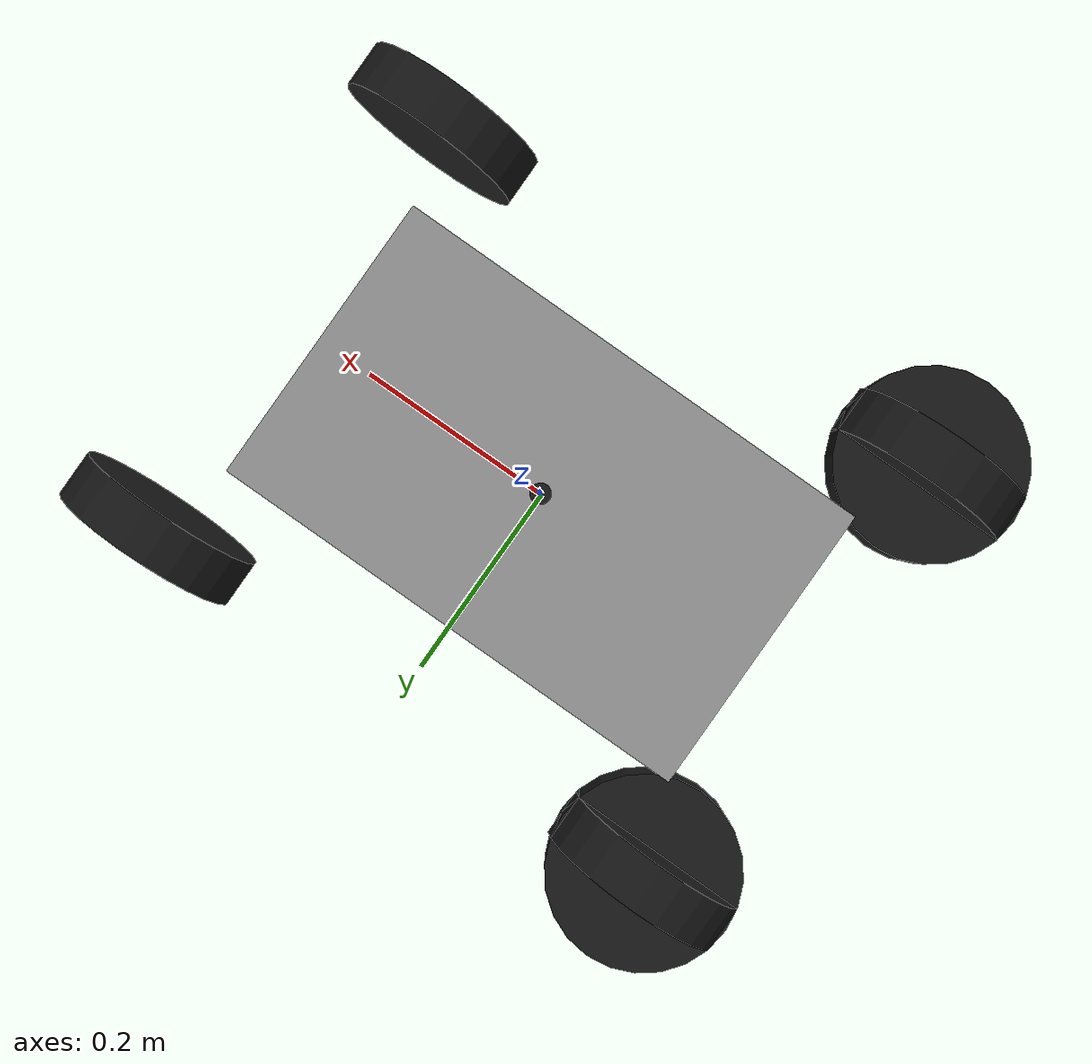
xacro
<?xml version="1.0"?>
<robot name="one_wheel"
    xmlns:xacro="http://www.ros.org/wiki/xacro">

    <xacro:include filename="ackermann_wheels.xacro" />
    <xacro:include filename="lib.xacro" />

    <xacro:property name="l_b" value="0.5"/>
    <xacro:property name="w_b" value="0.3"/>
    <xacro:property name="h_b" value="0.1"/>
    <xacro:property name="m_b" value="8"/>

    <xacro:property name="wheel_h" value="0.1"/>
    <xacro:property name="wheel_spacing" value="0.1"/>
    <link name="body_link">
        <visual>
            <geometry>
                <box size="${l_b} ${w_b} ${h_b}" />
            </geometry>
            <material name="Body_Gray" />
        </visual>
        <collision>
            <geometry>
                <box size="${l_b} ${w_b} ${h_b}" />
            </geometry>
        </collision>
        <xacro:box_inertia m="${m_b}" x="${l_b}" y="${w_b}" z="${h_b}" />
    </link>
    <gazebo reference="body_link">
        <material value="Gazebo/Wood" />
    </gazebo>

    <link name="base_link">

    </link>

    <joint name="body_joint" type="fixed">
        <parent link="base_link" />
        <child link="body_link" />
        <origin xyz="0 0 0" rpy="0 0 0" />
    </joint>
    <xacro:autocar_front_wheel name="fr" steer_name="r_steer" rpy="0 0 0" xyz="-0.3 ${wheel_spacing+(w_b/2)} ${-wheel_h}" base_link_name="body_link"/>
    <xacro:autocar_front_wheel name="fl" steer_name="l_steer" rpy="0 0 0" xyz="-0.3 ${-(wheel_spacing+(w_b/2))}  ${-wheel_h}" base_link_name="body_link"/>
    <xacro:autocar_back_wheel name="br" rpy="0 0 0" xyz="0.3 ${wheel_spacing+(w_b/2)} ${-wheel_h}" base_link_name="body_link"/>
    <xacro:autocar_back_wheel name="bl" rpy="0 0 0" xyz="0.3 ${-(wheel_spacing+(w_b/2))} ${-wheel_h}" base_link_name="body_link"/>

    <xacro:property name="m_steer_wheel" value="0.8"/>
    <xacro:property name="r_steer_wheel" value="0.01"/>
    <xacro:property name="h_steer_wheel" value="0.01"/>
    <link name="steering_wheel">

        <xacro:cylinder_inertia m="${m_steer_wheel}" r="${r_steer_wheel}" h="${h_steer_wheel}"/>
        <visual>
            <origin rpy="0 0 0" xyz="0 0 0"/>
            <geometry>
                <cylinder radius="${r_steer_wheel}" length="${h_steer_wheel}" />
            </geometry>
            <material name="Wheel_Black"/>
        </visual>
    </link>

    <joint name="steering_joint" type="continuous">
        <origin rpy="0 0 0" xyz="0 0 ${(h_b+h_steer_wheel)/2+0.001}"/>
        <parent link="body_link"/>
        <child link="steering_wheel"/>
        <axis xyz="0.0 0.0 1.0"/>
        <limit effort="100.0" lower="-6" upper="6" velocity="100"/>
        <dynamics damping="0.0" friction="1.0"/>
    </joint>

    <xacro:property name="steering_pid" value="100 0 17"/>
    <xacro:property name="steering_i_range" value="0 0"/>

    <xacro:property name="linear_pid" value="1 0 0"/>
    <xacro:property name="linear_i_range" value="0 0"/>

    <gazebo>
        <plugin name='ackermann_drive' filename='libgazebo_ros_ackermann_drive.so'>

            <ros>
                <namespace>ackermann_dorothy</namespace>
                <remapping>cmd_vel:=cmd_vel</remapping>
                <remapping>odom:=odom</remapping>
                <remapping>distance:=distance</remapping>
            </ros>

            <update_rate>100.0</update_rate>

            <!-- wheels -->
            <front_left_joint>fl_axle</front_left_joint>
            <front_right_joint>fr_axle</front_right_joint>
            <rear_left_joint>bl_axle</rear_left_joint>
            <rear_right_joint>br_axle</rear_right_joint>
            <left_steering_joint>l_steer</left_steering_joint>
            <right_steering_joint>r_steer</right_steering_joint>

            <!-- Max absolute steer angle for tyre in radians-->
            <!-- Any cmd_vel angular z greater than this would be capped -->
            <max_steer>0.6</max_steer>

            <!-- Max absolute steering angle of steering wheel -->
            <!-- Max absolute steering angle of steering wheel -->
            <max_steering_angle>2</max_steering_angle>

            <!-- Max absolute linear speed in m/s -->
            <max_speed>10</max_speed>

            <!-- PID tuning -->
            <left_steering_pid_gain>${steering_pid} </left_steering_pid_gain>
            <left_steering_i_range>${steering_i_range}</left_steering_i_range>
            <right_steering_pid_gain>${steering_pid}</right_steering_pid_gain>
            <right_steering_i_range>${steering_i_range}</right_steering_i_range>
            <linear_velocity_pid_gain>${linear_pid}</linear_velocity_pid_gain>
            <linear_velocity_i_range>${linear_i_range}</linear_velocity_i_range>

            <!-- output -->
            <publish_odom>true</publish_odom>
            <publish_odom_tf>true</publish_odom_tf>
            <publish_wheel_tf>true</publish_wheel_tf>
            <publish_distance>true</publish_distance>

            <odometry_frame>odom</odometry_frame>
            <robot_base_frame>base_link</robot_base_frame>

        </plugin>
    </gazebo>

</robot>

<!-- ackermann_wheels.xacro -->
<!-- Macros and impelemnatation of wheels, suspensions and steering system -->

<robot xmlns:xacro="http://ros.org/wiki/xacro">
    <material name="Wheel_Black">
        <color rgba="0.1 0.1 0.1 1" />
    </material>
    <xacro:property name="w_wheel" value="0.05" />
    <xacro:property name="r_wheel" value="0.1" />
    <xacro:property name="m_wheel" value="0.3" />
    <xacro:property name="M_PI" value="3.14159265359" />

    <xacro:property name="fdir" value="0 0 1"/>
    <xacro:property name="kd" value="1e1" />
    <xacro:property name="kp" value="1e5" />
    <xacro:property name="wheel_slip" value="100" />
    <xacro:property name="wheel_mu1" value="1.0" />
    <xacro:property name="wheel_mu2" value="1.0" />

    <xacro:property name="wheel_max_effort" value="20.0" />
    <xacro:property name="wheel_max_velocity" value="20.0" />

    <xacro:macro name="cylinder_inertia" params="m r h">
        <inertial>
            <origin xyz="0 0 0" rpy="0 0 0"/>
            <mass value="${m}" />
            <inertia ixx="${m*(3*r*r+h*h)/12}" ixy="0" ixz="0" iyy="${m*(3*r*r+h*h)/12}" iyz="0" izz="${m*r*r/2}" />
        </inertial>
    </xacro:macro>
    <xacro:macro name="wheel_link" params="name">

        <link name="${name}_1">
            <xacro:cylinder_inertia m="${m_wheel}" r="${r_wheel}" h="${w_wheel}"/>
            <visual>
                <origin rpy="0 0 0" xyz="0 0 0"/>
                <geometry>
                    <cylinder radius="${r_wheel}" length="${w_wheel}" />
                </geometry>
                <material name="Wheel_Black"/>
            </visual>
            <collision>
                <origin rpy="0 0 0" xyz="0 0 0"/>
                <geometry>
                    <cylinder radius="${r_wheel}" length="${w_wheel}" />
                </geometry>
            </collision>
        </link>
    </xacro:macro>

    <xacro:macro name="autocar_back_wheel" params="name rpy xyz base_link_name">
        <xacro:wheel_link name="${name}"/>

        <joint name="${name}_axle" type="continuous">
            <origin rpy="${M_PI/2} 0 0" xyz="${xyz}"/>
            <parent link="${base_link_name}"/>
            <child link="${name}_1"/>
            <axis xyz="0.0 0.0 1.0"/>
            <limit effort="${wheel_max_effort}"  velocity="${wheel_max_velocity}"/>
        </joint>
        <gazebo reference="${name}_1">
            <material value="Gazebo/Black"/>

            <mu1>${wheel_mu1}</mu1>
            <mu2>${wheel_mu2}</mu2>
            <slip1>${wheel_slip}</slip1>
            <kp>${kp}</kp>
            <kd>${kd}</kd>
            <selfCollide>true</selfCollide>
        </gazebo>
    </xacro:macro>

    <xacro:macro name="autocar_front_wheel" params="name steer_name rpy xyz base_link_name">

        <xacro:wheel_link name="${name}"/>
        <link name="${steer_name}_1">
            <inertial>
                <origin rpy="0 0 0" xyz="0.003381 1.5929e-07 0.02162"/>
                <mass value="1"/>
                <inertia ixx="1.0" ixy="0.0" ixz="0.0" iyy="1.0" iyz="0.0" izz="1.0"/>
            </inertial>
            <visual>
                <origin rpy="0 0 0" xyz="0 0 0"/>
                <geometry>
                    <cylinder radius="${r_wheel}" length="${w_wheel}" />
                </geometry>
                <material name="Wheel_Black"/>
            </visual>
        </link>

        <joint name="${steer_name}" type="revolute">
            <origin rpy="0 0 0" xyz="${xyz}"/>
            <parent link="${base_link_name}"/>
            <child link="${steer_name}_1"/>
            <axis xyz="0.0 0.0 1.0"/>
            <dynamics damping="0.0" friction="1.0"/>
            <limit effort="100.0" lower="-0.95" upper="0.95" velocity="100"/>
        </joint>
        <joint name="${name}_axle" type="continuous">
            <origin rpy="${M_PI/2} 0 0" xyz="0.0 0.0 0.0"/>
            <parent link="${steer_name}_1"/>
            <child link="${name}_1"/>
            <axis xyz="0.0 0.0 1.0"/>
            <limit effort="${wheel_max_effort}"  velocity="${wheel_max_velocity}"/>
        </joint>

        <gazebo reference="${steer_name}_1">
            <material value="Gazebo/GreyTransparent " />
            <mu1>0.2</mu1>
            <mu2>0.2</mu2>
            <selfCollide>true</selfCollide>
        </gazebo>
        <gazebo reference="${name}_1">
            <material>Gazebo/DarkGrey</material>
            <mu1>${wheel_mu1}</mu1>
            <mu2>${wheel_mu1}</mu2>
            <slip1>${wheel_slip}</slip1>
            <kp>${kp}</kp>
            <kd>${kd}</kd>
            <selfCollide>true</selfCollide>
        </gazebo>
    </xacro:macro>

</robot>

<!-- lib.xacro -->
<robot xmlns:xacro="http://ros.org/wiki/xacro">

  <xacro:property name="M_PI" value="3.14159" />

  <xacro:macro name="cylinder_inertia" params="m r h">
    <inertial>
      <mass value="${m}" />
      <inertia ixx="${m*(3*r*r+h*h)/12}" ixy="0" ixz="0" iyy="${m*(3*r*r+h*h)/12}" iyz="0" izz="${m*r*r/2}" />
    </inertial>
  </xacro:macro>

  <xacro:macro name="box_inertia" params="m x y z">
    <inertial>
      <mass value="${m}" />
      <inertia ixx="${m*(y*y+z*z)/12}" ixy="0" ixz="0" iyy="${m*(x*x+z*z)/12}" iyz="0" izz="${m*(x*x+z*z)/12}" />
    </inertial>
  </xacro:macro>

  <xacro:macro name="sphere_inertia" params="m r">
    <inertial>
      <mass value="${m}" />
      <mass value="${m}" />
      <inertial ixx="${2*m*r*r/5}" ixy="0" ixz="0" iyy="${2*m*r*r/5}" iyz="0" izz="${2*m*r*r/5}" />
    </inertial>
  </xacro:macro>
  <xacro:macro name="zero_inertia">
    <xacro:sphere_inertia m="0.01" r="0.01" />
  </xacro:macro>

  <xacro:macro name="transmission" params="joint">
    <ros2_control name="GazeboSystem" type="system">
      <hardware>
        <plugin>gazebo_ros2_control/GazeboSystem</plugin>
      </hardware>
      <joint name="${joint}">
        <command_interface name="effort">
          <param name="min">-1000</param>
          <param name="max">1000</param>
        </command_interface>
        <state_interface name="position">
          <param name="initial_value">0.0</param>
        </state_interface>
        <state_interface name="velocity"/>
        <state_interface name="effort"/>
      </joint>
    </ros2_control>
  </xacro:macro>

  <xacro:macro name="cam" params="suffix xyz rpy pod_link_name">
    <link name="camera_${suffix}">
      <visual>
        <origin xyz="0 0 0.0" rpy="0 0 0" />
        <geometry>
          <box size="0.01 0.04 0.04" />
        </geometry>
        <material name="red" />
      </visual>
      <collision>
        <geometry>
          <box size="0.01 0.04 0.04" />
        </geometry>
      </collision>

      <inertial>
        <mass value="0.01" />
        <origin xyz="0 0 0" />
        <inertia ixx="0.0001" ixy="0.0" ixz="0.0" iyy="0.0001" iyz="0.0" izz="0.0001" />
      </inertial>
    </link>

    <gazebo reference="camera_${suffix}">
      <material>Gazebo/Red</material>
      <sensor name="camera_${suffix}_sensor" type="camera">
        <camera>
          <horizontal_fov>1.5</horizontal_fov>
          <image>
            <width>640</width>
            <height>480</height>
          </image>
          <clip>
            <near>0.1</near>
            <far>1000</far>
          </clip>
        </camera>
        <always_on>1</always_on>
        <update_rate>10</update_rate>
        <visualize>false</visualize>
        <camera name="camera_${suffix}">
          <distortion>
            <k1>0.0</k1>
            <k2>0.0</k2>
            <k3>0.0</k3>
            <p1>0.0</p1>
            <p2>0.0</p2>
            <center> 0.5 0.5 </center>
          </distortion>
        </camera>

        <plugin name="camera_controller" filename="libgazebo_ros_camera.so">

          <ros>
            <namespace></namespace>
          </ros>
          <hack_baseline>0.07</hack_baseline>
          <frame_name>camera_${suffix}</frame_name>
        </plugin>
      </sensor>
    </gazebo>

    <joint name="cam_joint_${suffix}" type="fixed">
      <parent link="${pod_link_name}" />
      <child link="camera_${suffix}" />
      <origin xyz="${xyz}" rpy="${rpy}" />
    </joint>

    <gazebo reference="cam_joint_${suffix}">
        <preserveFixedJoint>true</preserveFixedJoint>
    </gazebo>
  </xacro:macro>

</robot>
